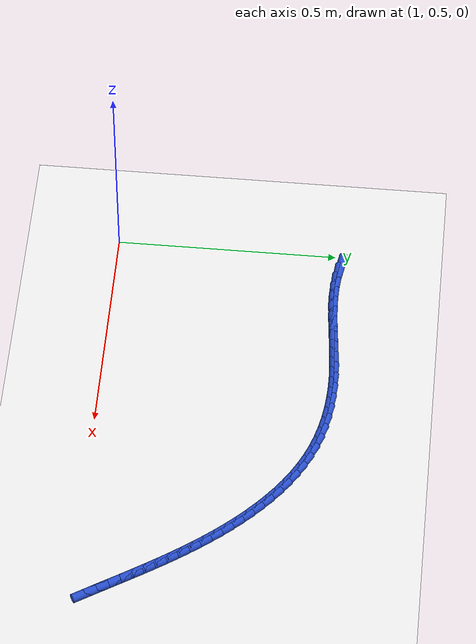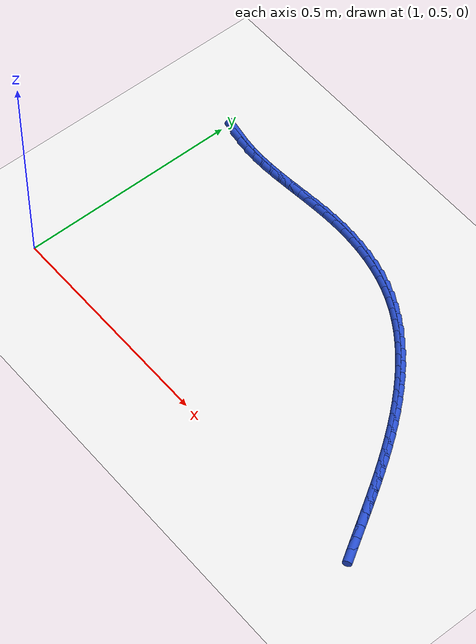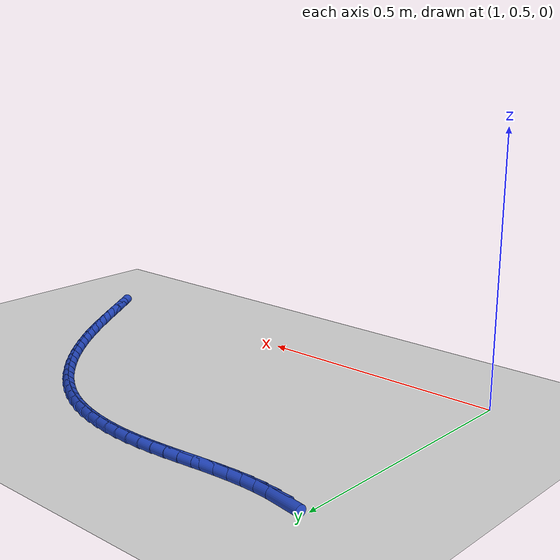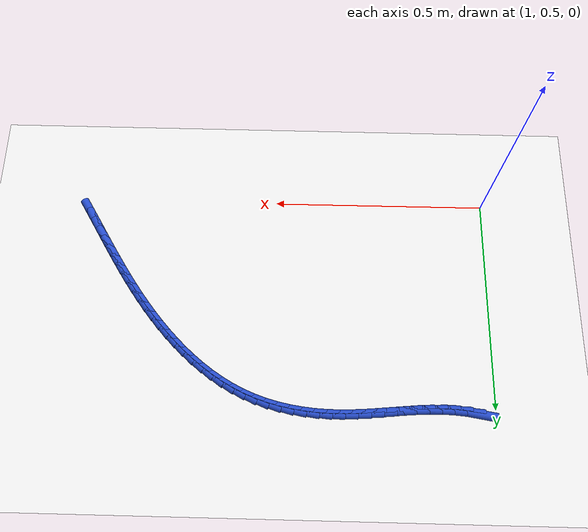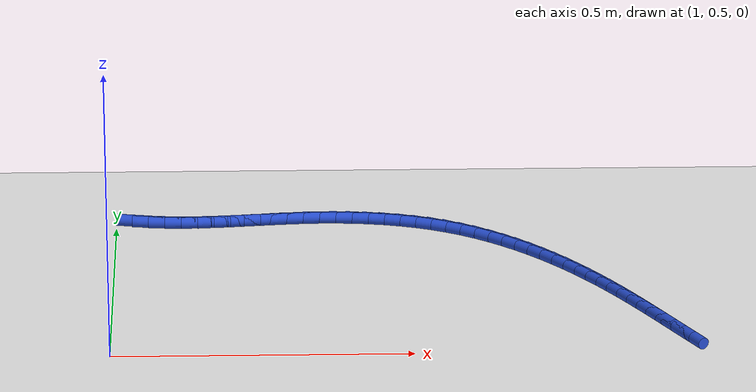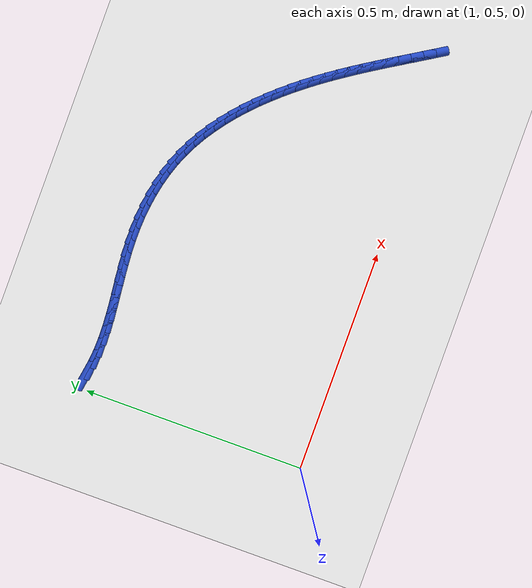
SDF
<sdf version="1.6">
 <world name="default">
  <model name="ground_plane">
   <static>1</static>
   <link name="link">
    <collision name="collision">
     <geometry><plane><normal>0 0 1</normal><size>100 100</size></plane></geometry>
     <surface><friction><ode><mu>100</mu><mu2>50</mu2></ode></friction></surface>
    </collision>
    <visual name="visual">
     <cast_shadows>0</cast_shadows>
     <geometry><plane><normal>0 0 1</normal><size>100 100</size></plane></geometry>
     <material>
      <script><uri>file://media/materials/scripts/gazebo.material</uri><name>Gazebo/WhiteGlow</name></script>
     </material>
    </visual>
   </link>
  </model>
  <model name="line">
   <link name="link_59">
    <pose>1.0390812889827286 1.0123433416572625 0.01 0 1.57 -0.16289647095071633</pose>
    <collision name="collision">
     <geometry><cylinder><radius>0.01</radius><length>0.08</length></cylinder></geometry>
    </collision>
    <visual name="visual">
     <material>
      <script><name>Gazebo/Blue</name><uri>file://media/materials/scripts/gazebo.material</uri></script>
     </material>
     <geometry><cylinder><radius>0.01</radius><length>0.08</length></cylinder></geometry>
    </visual>
   </link>
   <link name="link_60">
    <pose>1.0665577846280159 1.007827503664897 0.01 0 1.57 -0.09038923001171945</pose>
    <collision name="collision">
     <geometry><cylinder><radius>0.01</radius><length>0.08</length></cylinder></geometry>
    </collision>
    <visual name="visual">
     <material>
      <script><name>Gazebo/Blue</name><uri>file://media/materials/scripts/gazebo.material</uri></script>
     </material>
     <geometry><cylinder><radius>0.01</radius><length>0.08</length></cylinder></geometry>
    </visual>
   </link>
   <link name="link_61">
    <pose>1.09415045575763 1.0053266087067578 0.01 0 1.57 -0.029283162239596233</pose>
    <collision name="collision">
     <geometry><cylinder><radius>0.01</radius><length>0.08</length></cylinder></geometry>
    </collision>
    <visual name="visual">
     <material>
      <script><name>Gazebo/Blue</name><uri>file://media/materials/scripts/gazebo.material</uri></script>
     </material>
     <geometry><cylinder><radius>0.01</radius><length>0.08</length></cylinder></geometry>
    </visual>
   </link>
   <link name="link_62">
    <pose>1.1218525453573984 1.004515171972734 0.01 0 1.57 0.019869408805196217</pose>
    <collision name="collision">
     <geometry><cylinder><radius>0.01</radius><length>0.08</length></cylinder></geometry>
    </collision>
    <visual name="visual">
     <material>
      <script><name>Gazebo/Blue</name><uri>file://media/materials/scripts/gazebo.material</uri></script>
     </material>
     <geometry><cylinder><radius>0.01</radius><length>0.08</length></cylinder></geometry>
    </visual>
   </link>
   <link name="link_63">
    <pose>1.1496572964131482 1.005067708652714 0.01 0 1.57 0.05696296524713587</pose>
    <collision name="collision">
     <geometry><cylinder><radius>0.01</radius><length>0.08</length></cylinder></geometry>
    </collision>
    <visual name="visual">
     <material>
      <script><name>Gazebo/Blue</name><uri>file://media/materials/scripts/gazebo.material</uri></script>
     </material>
     <geometry><cylinder><radius>0.01</radius><length>0.08</length></cylinder></geometry>
    </visual>
   </link>
   <link name="link_64">
    <pose>1.177557951910704 1.006658733936586 0.01 0 1.57 0.08213155598495231</pose>
    <collision name="collision">
     <geometry><cylinder><radius>0.01</radius><length>0.08</length></cylinder></geometry>
    </collision>
    <visual name="visual">
     <material>
      <script><name>Gazebo/Blue</name><uri>file://media/materials/scripts/gazebo.material</uri></script>
     </material>
     <geometry><cylinder><radius>0.01</radius><length>0.08</length></cylinder></geometry>
    </visual>
   </link>
   <link name="link_65">
    <pose>1.2055477548358933 1.0089627630142388 0.01 0 1.57 0.09558731416901978</pose>
    <collision name="collision">
     <geometry><cylinder><radius>0.01</radius><length>0.08</length></cylinder></geometry>
    </collision>
    <visual name="visual">
     <material>
      <script><name>Gazebo/Blue</name><uri>file://media/materials/scripts/gazebo.material</uri></script>
     </material>
     <geometry><cylinder><radius>0.01</radius><length>0.08</length></cylinder></geometry>
    </visual>
   </link>
   <link name="link_66">
    <pose>1.233619948174543 1.0116543110755607 0.01 0 1.57 0.09751546858803624</pose>
    <collision name="collision">
     <geometry><cylinder><radius>0.01</radius><length>0.08</length></cylinder></geometry>
    </collision>
    <visual name="visual">
     <material>
      <script><name>Gazebo/Blue</name><uri>file://media/materials/scripts/gazebo.material</uri></script>
     </material>
     <geometry><cylinder><radius>0.01</radius><length>0.08</length></cylinder></geometry>
    </visual>
   </link>
   <link name="link_67">
    <pose>1.2617677749124787 1.0144078933104406 0.01 0 1.57 0.08802223120758317</pose>
    <collision name="collision">
     <geometry><cylinder><radius>0.01</radius><length>0.08</length></cylinder></geometry>
    </collision>
    <visual name="visual">
     <material>
      <script><name>Gazebo/Blue</name><uri>file://media/materials/scripts/gazebo.material</uri></script>
     </material>
     <geometry><cylinder><radius>0.01</radius><length>0.08</length></cylinder></geometry>
    </visual>
   </link>
   <link name="link_68">
    <pose>1.2899844780355267 1.0168980249087665 0.01 0 1.57 0.0671293677111708</pose>
    <collision name="collision">
     <geometry><cylinder><radius>0.01</radius><length>0.08</length></cylinder></geometry>
    </collision>
    <visual name="visual">
     <material>
      <script><name>Gazebo/Blue</name><uri>file://media/materials/scripts/gazebo.material</uri></script>
     </material>
     <geometry><cylinder><radius>0.01</radius><length>0.08</length></cylinder></geometry>
    </visual>
   </link>
   <link name="link_69">
    <pose>1.3182633005295146 1.0187992210604273 0.01 0 1.57 0.034812268123149415</pose>
    <collision name="collision">
     <geometry><cylinder><radius>0.01</radius><length>0.08</length></cylinder></geometry>
    </collision>
    <visual name="visual">
     <material>
      <script><name>Gazebo/Blue</name><uri>file://media/materials/scripts/gazebo.material</uri></script>
     </material>
     <geometry><cylinder><radius>0.01</radius><length>0.08</length></cylinder></geometry>
    </visual>
   </link>
   <link name="link_70">
    <pose>1.346597485380268 1.0197859969553116 0.01 0 1.57 -0.0075205285078051454</pose>
    <collision name="collision">
     <geometry><cylinder><radius>0.01</radius><length>0.08</length></cylinder></geometry>
    </collision>
    <visual name="visual">
     <material>
      <script><name>Gazebo/Blue</name><uri>file://media/materials/scripts/gazebo.material</uri></script>
     </material>
     <geometry><cylinder><radius>0.01</radius><length>0.08</length></cylinder></geometry>
    </visual>
   </link>
   <link name="link_71">
    <pose>1.3749644129799756 1.019572658645583 0.01 0 1.57 -0.05391742898823277</pose>
    <collision name="collision">
     <geometry><cylinder><radius>0.01</radius><length>0.08</length></cylinder></geometry>
    </collision>
    <visual name="visual">
     <material>
      <script><name>Gazebo/Blue</name><uri>file://media/materials/scripts/gazebo.material</uri></script>
     </material>
     <geometry><cylinder><radius>0.01</radius><length>0.08</length></cylinder></geometry>
    </visual>
   </link>
   <link name="link_72">
    <pose>1.4032731628967807 1.0180448428462787 0.01 0 1.57 -0.1030600554830914</pose>
    <collision name="collision">
     <geometry><cylinder><radius>0.01</radius><length>0.08</length></cylinder></geometry>
    </collision>
    <visual name="visual">
     <material>
      <script><name>Gazebo/Blue</name><uri>file://media/materials/scripts/gazebo.material</uri></script>
     </material>
     <geometry><cylinder><radius>0.01</radius><length>0.08</length></cylinder></geometry>
    </visual>
   </link>
   <link name="link_73">
    <pose>1.431414435596673 1.0151342897243172 0.01 0 1.57 -0.1552672594832462</pose>
    <collision name="collision">
     <geometry><cylinder><radius>0.01</radius><length>0.08</length></cylinder></geometry>
    </collision>
    <visual name="visual">
     <material>
      <script><name>Gazebo/Blue</name><uri>file://media/materials/scripts/gazebo.material</uri></script>
     </material>
     <geometry><cylinder><radius>0.01</radius><length>0.08</length></cylinder></geometry>
    </visual>
   </link>
   <link name="link_74">
    <pose>1.4592789312928902 1.0107727400806397 0.01 0 1.57 -0.21083489125790836</pose>
    <collision name="collision">
     <geometry><cylinder><radius>0.01</radius><length>0.08</length></cylinder></geometry>
    </collision>
    <visual name="visual">
     <material>
      <script><name>Gazebo/Blue</name><uri>file://media/materials/scripts/gazebo.material</uri></script>
     </material>
     <geometry><cylinder><radius>0.01</radius><length>0.08</length></cylinder></geometry>
    </visual>
   </link>
   <link name="link_75">
    <pose>1.4867573501986697 1.0048919347161878 0.01 0 1.57 -0.27001871910243197</pose>
    <collision name="collision">
     <geometry><cylinder><radius>0.01</radius><length>0.08</length></cylinder></geometry>
    </collision>
    <visual name="visual">
     <material>
      <script><name>Gazebo/Blue</name><uri>file://media/materials/scripts/gazebo.material</uri></script>
     </material>
     <geometry><cylinder><radius>0.01</radius><length>0.08</length></cylinder></geometry>
    </visual>
   </link>
   <link name="link_76">
    <pose>1.513740392527249 0.9974236144319025 0.01 0 1.57 -0.3330114237377714</pose>
    <collision name="collision">
     <geometry><cylinder><radius>0.01</radius><length>0.08</length></cylinder></geometry>
    </collision>
    <visual name="visual">
     <material>
      <script><name>Gazebo/Blue</name><uri>file://media/materials/scripts/gazebo.material</uri></script>
     </material>
     <geometry><cylinder><radius>0.01</radius><length>0.08</length></cylinder></geometry>
    </visual>
   </link>
   <link name="link_77">
    <pose>1.5401187584918665 0.9882995200287258 0.01 0 1.57 -0.399752509041242</pose>
    <collision name="collision">
     <geometry><cylinder><radius>0.01</radius><length>0.08</length></cylinder></geometry>
    </collision>
    <visual name="visual">
     <material>
      <script><name>Gazebo/Blue</name><uri>file://media/materials/scripts/gazebo.material</uri></script>
     </material>
     <geometry><cylinder><radius>0.01</radius><length>0.08</length></cylinder></geometry>
    </visual>
   </link>
   <link name="link_78">
    <pose>1.5657853531439214 0.9774553448193805 0.01 0 1.57 -0.46627773351622187</pose>
    <collision name="collision">
     <geometry><cylinder><radius>0.01</radius><length>0.08</length></cylinder></geometry>
    </collision>
    <visual name="visual">
     <material>
      <script><name>Gazebo/Blue</name><uri>file://media/materials/scripts/gazebo.material</uri></script>
     </material>
     <geometry><cylinder><radius>0.01</radius><length>0.08</length></cylinder></geometry>
    </visual>
   </link>
   <link name="link_79">
    <pose>1.5906866106589983 0.9649227413111007 0.01 0 1.57 -0.5283933904988294</pose>
    <collision name="collision">
     <geometry><cylinder><radius>0.01</radius><length>0.08</length></cylinder></geometry>
    </collision>
    <visual name="visual">
     <material>
      <script><name>Gazebo/Blue</name><uri>file://media/materials/scripts/gazebo.material</uri></script>
     </material>
     <geometry><cylinder><radius>0.01</radius><length>0.08</length></cylinder></geometry>
    </visual>
   </link>
   <link name="link_80">
    <pose>1.6148241082456831 0.9508322143855952 0.01 0 1.57 -0.5858728921140296</pose>
    <collision name="collision">
     <geometry><cylinder><radius>0.01</radius><length>0.08</length></cylinder></geometry>
    </collision>
    <visual name="visual">
     <material>
      <script><name>Gazebo/Blue</name><uri>file://media/materials/scripts/gazebo.material</uri></script>
     </material>
     <geometry><cylinder><radius>0.01</radius><length>0.08</length></cylinder></geometry>
    </visual>
   </link>
   <link name="link_81">
    <pose>1.6382019508217687 0.9353188002324027 0.01 0 1.57 -0.6388038422222837</pose>
    <collision name="collision">
     <geometry><cylinder><radius>0.01</radius><length>0.08</length></cylinder></geometry>
    </collision>
    <visual name="visual">
     <material>
      <script><name>Gazebo/Blue</name><uri>file://media/materials/scripts/gazebo.material</uri></script>
     </material>
     <geometry><cylinder><radius>0.01</radius><length>0.08</length></cylinder></geometry>
    </visual>
   </link>
   <link name="link_82">
    <pose>1.6608242433050477 0.9185175350410641 0.01 0 1.57 -0.6873637962840522</pose>
    <collision name="collision">
     <geometry><cylinder><radius>0.01</radius><length>0.08</length></cylinder></geometry>
    </collision>
    <visual name="visual">
     <material>
      <script><name>Gazebo/Blue</name><uri>file://media/materials/scripts/gazebo.material</uri></script>
     </material>
     <geometry><cylinder><radius>0.01</radius><length>0.08</length></cylinder></geometry>
    </visual>
   </link>
   <link name="link_83">
    <pose>1.6826950906133145 0.9005634550011201 0.01 0 1.57 -0.731786318917979</pose>
    <collision name="collision">
     <geometry><cylinder><radius>0.01</radius><length>0.08</length></cylinder></geometry>
    </collision>
    <visual name="visual">
     <material>
      <script><name>Gazebo/Blue</name><uri>file://media/materials/scripts/gazebo.material</uri></script>
     </material>
     <geometry><cylinder><radius>0.01</radius><length>0.08</length></cylinder></geometry>
    </visual>
   </link>
   <link name="link_84">
    <pose>1.703818597664363 0.8815915963021103 0.01 0 1.57 -0.7723338587616769</pose>
    <collision name="collision">
     <geometry><cylinder><radius>0.01</radius><length>0.08</length></cylinder></geometry>
    </collision>
    <visual name="visual">
     <material>
      <script><name>Gazebo/Blue</name><uri>file://media/materials/scripts/gazebo.material</uri></script>
     </material>
     <geometry><cylinder><radius>0.01</radius><length>0.08</length></cylinder></geometry>
    </visual>
   </link>
   <link name="link_85">
    <pose>1.7241988693759853 0.8617369951335744 0.01 0 1.57 -0.8092774155509176</pose>
    <collision name="collision">
     <geometry><cylinder><radius>0.01</radius><length>0.08</length></cylinder></geometry>
    </collision>
    <visual name="visual">
     <material>
      <script><name>Gazebo/Blue</name><uri>file://media/materials/scripts/gazebo.material</uri></script>
     </material>
     <geometry><cylinder><radius>0.01</radius><length>0.08</length></cylinder></geometry>
    </visual>
   </link>
   <link name="link_86">
    <pose>1.743840010665975 0.8411346876850534 0.01 0 1.57 -0.8428820918112516</pose>
    <collision name="collision">
     <geometry><cylinder><radius>0.01</radius><length>0.08</length></cylinder></geometry>
    </collision>
    <visual name="visual">
     <material>
      <script><name>Gazebo/Blue</name><uri>file://media/materials/scripts/gazebo.material</uri></script>
     </material>
     <geometry><cylinder><radius>0.01</radius><length>0.08</length></cylinder></geometry>
    </visual>
   </link>
   <link name="link_87">
    <pose>1.7627461264521262 0.8199197101460872 0.01 0 1.57 -0.8733997879962678</pose>
    <collision name="collision">
     <geometry><cylinder><radius>0.01</radius><length>0.08</length></cylinder></geometry>
    </collision>
    <visual name="visual">
     <material>
      <script><name>Gazebo/Blue</name><uri>file://media/materials/scripts/gazebo.material</uri></script>
     </material>
     <geometry><cylinder><radius>0.01</radius><length>0.08</length></cylinder></geometry>
    </visual>
   </link>
   <link name="link_88">
    <pose>1.780921827457331 0.7982263848692446 0.01 0 1.57 -0.9011440772615743</pose>
    <collision name="collision">
     <geometry><cylinder><radius>0.01</radius><length>0.08</length></cylinder></geometry>
    </collision>
    <visual name="visual">
     <material>
      <script><name>Gazebo/Blue</name><uri>file://media/materials/scripts/gazebo.material</uri></script>
     </material>
     <geometry><cylinder><radius>0.01</radius><length>0.08</length></cylinder></geometry>
    </visual>
   </link>
   <link name="link_89">
    <pose>1.79839886893319 0.7761507254430474 0.01 0 1.57 -0.9262599156094407</pose>
    <collision name="collision">
     <geometry><cylinder><radius>0.01</radius><length>0.08</length></cylinder></geometry>
    </collision>
    <visual name="visual">
     <material>
      <script><name>Gazebo/Blue</name><uri>file://media/materials/scripts/gazebo.material</uri></script>
     </material>
     <geometry><cylinder><radius>0.01</radius><length>0.08</length></cylinder></geometry>
    </visual>
   </link>
   <link name="link_90">
    <pose>1.8152493346173466 0.7537318303232237 0.01 0 1.57 -0.94864955188879</pose>
    <collision name="collision">
     <geometry><cylinder><radius>0.01</radius><length>0.08</length></cylinder></geometry>
    </collision>
    <visual name="visual">
     <material>
      <script><name>Gazebo/Blue</name><uri>file://media/materials/scripts/gazebo.material</uri></script>
     </material>
     <geometry><cylinder><radius>0.01</radius><length>0.08</length></cylinder></geometry>
    </visual>
   </link>
   <link name="link_91">
    <pose>1.8315485810788399 0.7310041790558486 0.01 0 1.57 -0.9682268597767398</pose>
    <collision name="collision">
     <geometry><cylinder><radius>0.01</radius><length>0.08</length></cylinder></geometry>
    </collision>
    <visual name="visual">
     <material>
      <script><name>Gazebo/Blue</name><uri>file://media/materials/scripts/gazebo.material</uri></script>
     </material>
     <geometry><cylinder><radius>0.01</radius><length>0.08</length></cylinder></geometry>
    </visual>
   </link>
   <link name="link_92">
    <pose>1.847371964886707 0.7080022511869972 0.01 0 1.57 -0.984929691876685</pose>
    <collision name="collision">
     <geometry><cylinder><radius>0.01</radius><length>0.08</length></cylinder></geometry>
    </collision>
    <visual name="visual">
     <material>
      <script><name>Gazebo/Blue</name><uri>file://media/materials/scripts/gazebo.material</uri></script>
     </material>
     <geometry><cylinder><radius>0.01</radius><length>0.08</length></cylinder></geometry>
    </visual>
   </link>
   <link name="link_93">
    <pose>1.862794842609987 0.6847605262627453 0.01 0 1.57 -0.9987159368080589</pose>
    <collision name="collision">
     <geometry><cylinder><radius>0.01</radius><length>0.08</length></cylinder></geometry>
    </collision>
    <visual name="visual">
     <material>
      <script><name>Gazebo/Blue</name><uri>file://media/materials/scripts/gazebo.material</uri></script>
     </material>
     <geometry><cylinder><radius>0.01</radius><length>0.08</length></cylinder></geometry>
    </visual>
   </link>
   <link name="link_94">
    <pose>1.8778925708177172 0.6613134838291685 0.01 0 1.57 -1.0095597619470347</pose>
    <collision name="collision">
     <geometry><cylinder><radius>0.01</radius><length>0.08</length></cylinder></geometry>
    </collision>
    <visual name="visual">
     <material>
      <script><name>Gazebo/Blue</name><uri>file://media/materials/scripts/gazebo.material</uri></script>
     </material>
     <geometry><cylinder><radius>0.01</radius><length>0.08</length></cylinder></geometry>
    </visual>
   </link>
   <link name="link_95">
    <pose>1.8927405060789362 0.6376956034323422 0.01 0 1.57 -1.0174482753391745</pose>
    <collision name="collision">
     <geometry><cylinder><radius>0.01</radius><length>0.08</length></cylinder></geometry>
    </collision>
    <visual name="visual">
     <material>
      <script><name>Gazebo/Blue</name><uri>file://media/materials/scripts/gazebo.material</uri></script>
     </material>
     <geometry><cylinder><radius>0.01</radius><length>0.08</length></cylinder></geometry>
    </visual>
   </link>
   <link name="link_96">
    <pose>1.9074140049626818 0.6139413646183414 0.01 0 1.57 -1.0223787666242508</pose>
    <collision name="collision">
     <geometry><cylinder><radius>0.01</radius><length>0.08</length></cylinder></geometry>
    </collision>
    <visual name="visual">
     <material>
      <script><name>Gazebo/Blue</name><uri>file://media/materials/scripts/gazebo.material</uri></script>
     </material>
     <geometry><cylinder><radius>0.01</radius><length>0.08</length></cylinder></geometry>
    </visual>
   </link>
   <link name="link_97">
    <pose>1.9219884240379932 0.5900852469332424 0.01 0 1.57 -1.0243566253499228</pose>
    <collision name="collision">
     <geometry><cylinder><radius>0.01</radius><length>0.08</length></cylinder></geometry>
    </collision>
    <visual name="visual">
     <material>
      <script><name>Gazebo/Blue</name><uri>file://media/materials/scripts/gazebo.material</uri></script>
     </material>
     <geometry><cylinder><radius>0.01</radius><length>0.08</length></cylinder></geometry>
    </visual>
   </link>
   <link name="link_98">
    <pose>1.9365391198739073 0.5661617299231201 0.01 0 1.57 -1.0233939872345128</pose>
    <collision name="collision">
     <geometry><cylinder><radius>0.01</radius><length>0.08</length></cylinder></geometry>
    </collision>
    <visual name="visual">
     <material>
      <script><name>Gazebo/Blue</name><uri>file://media/materials/scripts/gazebo.material</uri></script>
     </material>
     <geometry><cylinder><radius>0.01</radius><length>0.08</length></cylinder></geometry>
    </visual>
   </link>
   <link name="link_99">
    <pose>1.9511414490394627 0.5422052931340501 0.01 0 1.57 -1.0201546986422705</pose>
    <collision name="collision">
     <geometry><cylinder><radius>0.01</radius><length>0.08</length></cylinder></geometry>
    </collision>
    <visual name="visual">
     <material>
      <script><name>Gazebo/Blue</name><uri>file://media/materials/scripts/gazebo.material</uri></script>
     </material>
     <geometry><cylinder><radius>0.01</radius><length>0.08</length></cylinder></geometry>
    </visual>
   </link>
  </model>
 </world>
</sdf>
